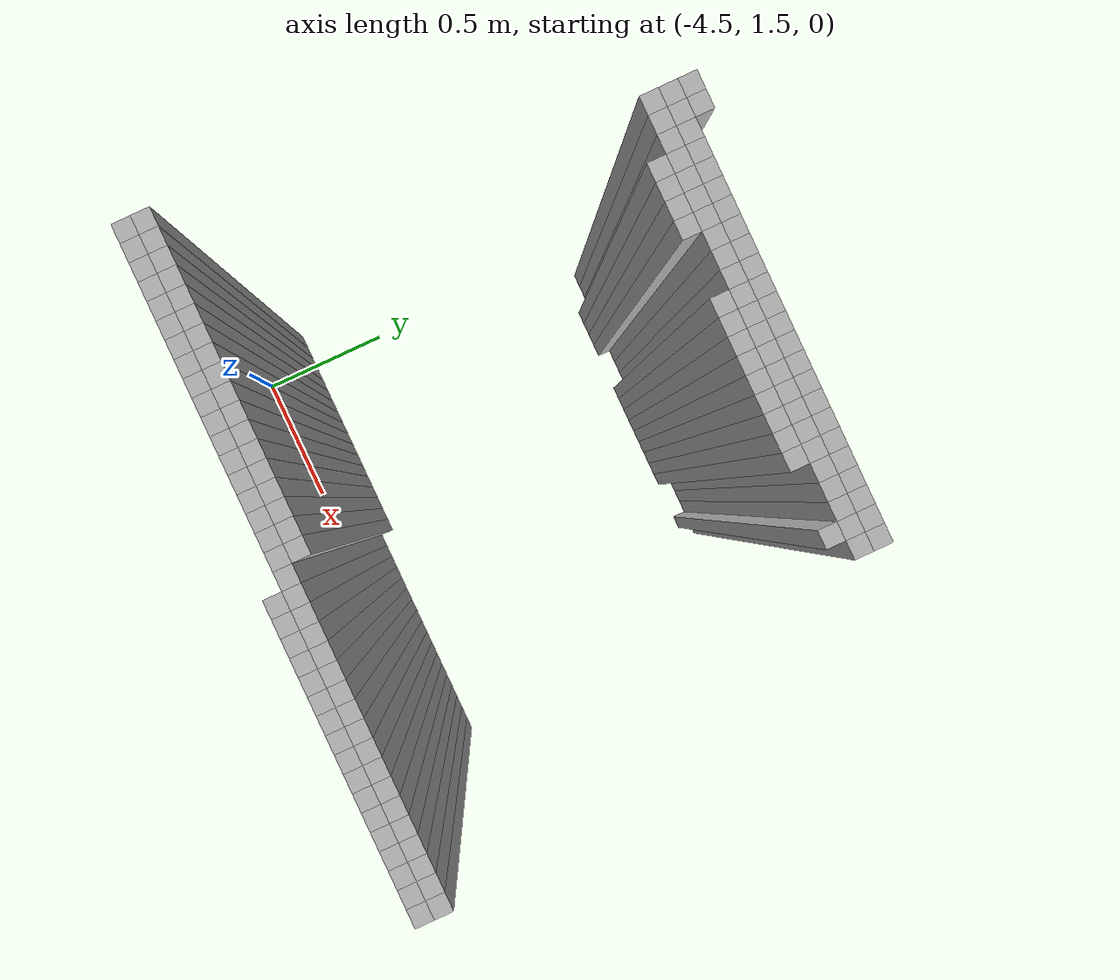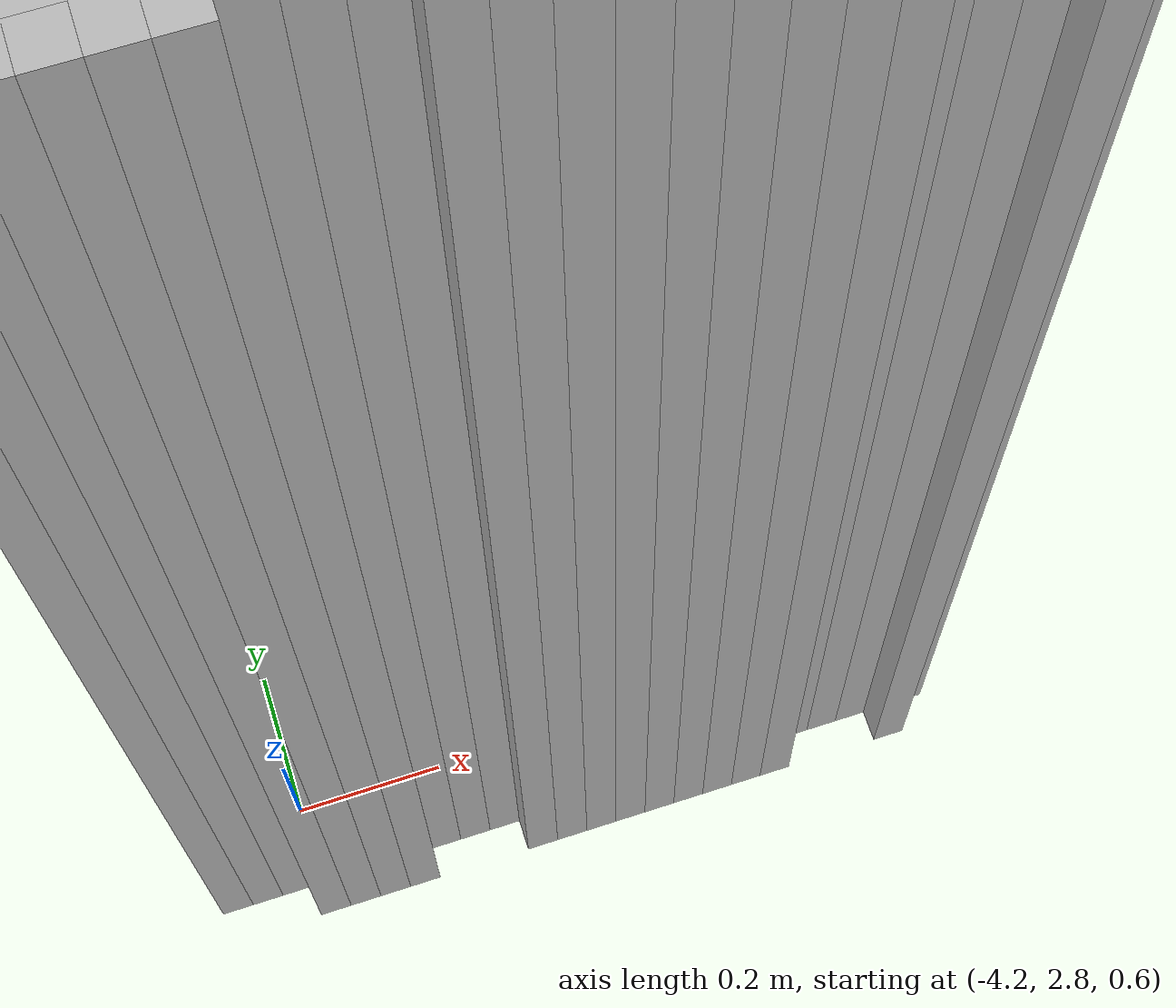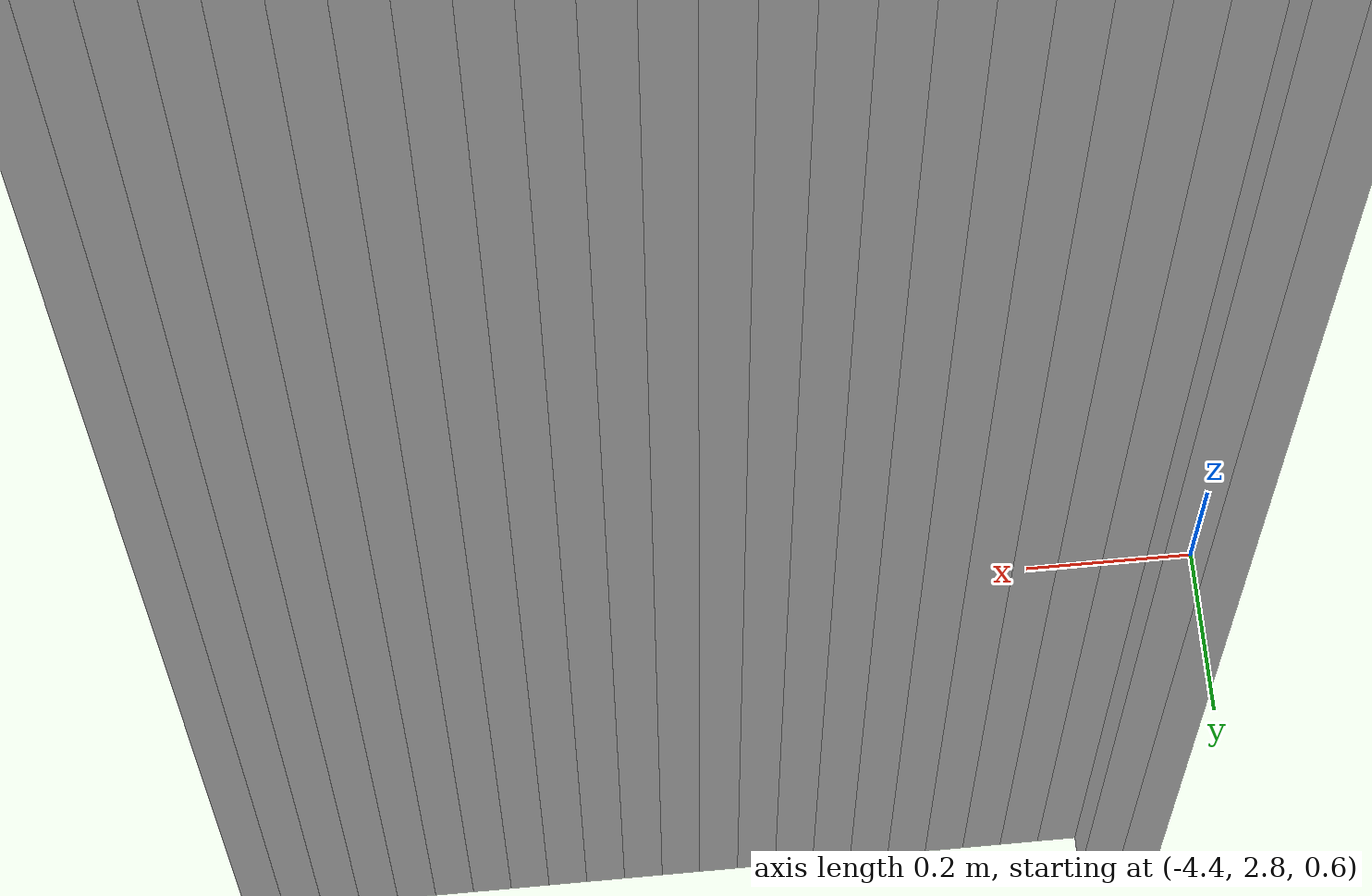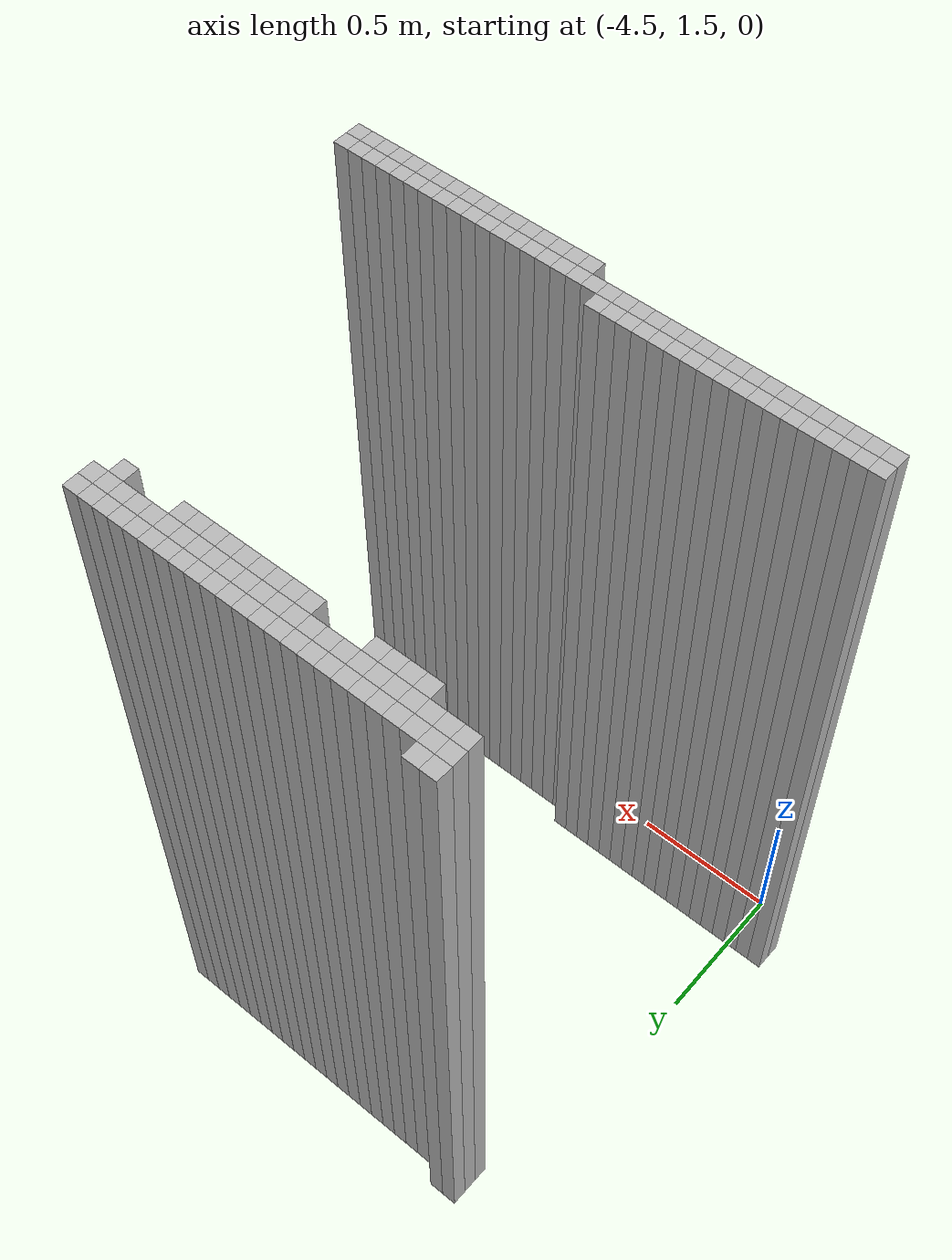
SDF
<sdf version="1.9">
 <world name="map_world">
  <model name="wall_136_94">
   <static>true</static>
   <pose>-4.361 2.980 1.250 0 0 0</pose>
   <link name="link">
    <collision name="collision"><geometry><box><size>0.050 0.050 2.500</size></box></geometry></collision>
    <visual name="visual"><geometry><box><size>0.050 0.050 2.500</size></box></geometry></visual>
   </link>
  </model>
  <model name="wall_137_94">
   <static>true</static>
   <pose>-4.311 2.980 1.250 0 0 0</pose>
   <link name="link">
    <collision name="collision"><geometry><box><size>0.050 0.050 2.500</size></box></geometry></collision>
    <visual name="visual"><geometry><box><size>0.050 0.050 2.500</size></box></geometry></visual>
   </link>
  </model>
  <model name="wall_136_95">
   <static>true</static>
   <pose>-4.361 2.930 1.250 0 0 0</pose>
   <link name="link">
    <collision name="collision"><geometry><box><size>0.050 0.050 2.500</size></box></geometry></collision>
    <visual name="visual"><geometry><box><size>0.050 0.050 2.500</size></box></geometry></visual>
   </link>
  </model>
  <model name="wall_137_95">
   <static>true</static>
   <pose>-4.311 2.930 1.250 0 0 0</pose>
   <link name="link">
    <collision name="collision"><geometry><box><size>0.050 0.050 2.500</size></box></geometry></collision>
    <visual name="visual"><geometry><box><size>0.050 0.050 2.500</size></box></geometry></visual>
   </link>
  </model>
  <model name="wall_138_95">
   <static>true</static>
   <pose>-4.261 2.930 1.250 0 0 0</pose>
   <link name="link">
    <collision name="collision"><geometry><box><size>0.050 0.050 2.500</size></box></geometry></collision>
    <visual name="visual"><geometry><box><size>0.050 0.050 2.500</size></box></geometry></visual>
   </link>
  </model>
  <model name="wall_139_95">
   <static>true</static>
   <pose>-4.211 2.930 1.250 0 0 0</pose>
   <link name="link">
    <collision name="collision"><geometry><box><size>0.050 0.050 2.500</size></box></geometry></collision>
    <visual name="visual"><geometry><box><size>0.050 0.050 2.500</size></box></geometry></visual>
   </link>
  </model>
  <model name="wall_140_95">
   <static>true</static>
   <pose>-4.161 2.930 1.250 0 0 0</pose>
   <link name="link">
    <collision name="collision"><geometry><box><size>0.050 0.050 2.500</size></box></geometry></collision>
    <visual name="visual"><geometry><box><size>0.050 0.050 2.500</size></box></geometry></visual>
   </link>
  </model>
  <model name="wall_141_95">
   <static>true</static>
   <pose>-4.111 2.930 1.250 0 0 0</pose>
   <link name="link">
    <collision name="collision"><geometry><box><size>0.050 0.050 2.500</size></box></geometry></collision>
    <visual name="visual"><geometry><box><size>0.050 0.050 2.500</size></box></geometry></visual>
   </link>
  </model>
  <model name="wall_142_95">
   <static>true</static>
   <pose>-4.061 2.930 1.250 0 0 0</pose>
   <link name="link">
    <collision name="collision"><geometry><box><size>0.050 0.050 2.500</size></box></geometry></collision>
    <visual name="visual"><geometry><box><size>0.050 0.050 2.500</size></box></geometry></visual>
   </link>
  </model>
  <model name="wall_143_95">
   <static>true</static>
   <pose>-4.011 2.930 1.250 0 0 0</pose>
   <link name="link">
    <collision name="collision"><geometry><box><size>0.050 0.050 2.500</size></box></geometry></collision>
    <visual name="visual"><geometry><box><size>0.050 0.050 2.500</size></box></geometry></visual>
   </link>
  </model>
  <model name="wall_144_95">
   <static>true</static>
   <pose>-3.961 2.930 1.250 0 0 0</pose>
   <link name="link">
    <collision name="collision"><geometry><box><size>0.050 0.050 2.500</size></box></geometry></collision>
    <visual name="visual"><geometry><box><size>0.050 0.050 2.500</size></box></geometry></visual>
   </link>
  </model>
  <model name="wall_145_95">
   <static>true</static>
   <pose>-3.911 2.930 1.250 0 0 0</pose>
   <link name="link">
    <collision name="collision"><geometry><box><size>0.050 0.050 2.500</size></box></geometry></collision>
    <visual name="visual"><geometry><box><size>0.050 0.050 2.500</size></box></geometry></visual>
   </link>
  </model>
  <model name="wall_146_95">
   <static>true</static>
   <pose>-3.861 2.930 1.250 0 0 0</pose>
   <link name="link">
    <collision name="collision"><geometry><box><size>0.050 0.050 2.500</size></box></geometry></collision>
    <visual name="visual"><geometry><box><size>0.050 0.050 2.500</size></box></geometry></visual>
   </link>
  </model>
  <model name="wall_147_95">
   <static>true</static>
   <pose>-3.811 2.930 1.250 0 0 0</pose>
   <link name="link">
    <collision name="collision"><geometry><box><size>0.050 0.050 2.500</size></box></geometry></collision>
    <visual name="visual"><geometry><box><size>0.050 0.050 2.500</size></box></geometry></visual>
   </link>
  </model>
  <model name="wall_148_95">
   <static>true</static>
   <pose>-3.761 2.930 1.250 0 0 0</pose>
   <link name="link">
    <collision name="collision"><geometry><box><size>0.050 0.050 2.500</size></box></geometry></collision>
    <visual name="visual"><geometry><box><size>0.050 0.050 2.500</size></box></geometry></visual>
   </link>
  </model>
  <model name="wall_149_95">
   <static>true</static>
   <pose>-3.711 2.930 1.250 0 0 0</pose>
   <link name="link">
    <collision name="collision"><geometry><box><size>0.050 0.050 2.500</size></box></geometry></collision>
    <visual name="visual"><geometry><box><size>0.050 0.050 2.500</size></box></geometry></visual>
   </link>
  </model>
  <model name="wall_150_95">
   <static>true</static>
   <pose>-3.661 2.930 1.250 0 0 0</pose>
   <link name="link">
    <collision name="collision"><geometry><box><size>0.050 0.050 2.500</size></box></geometry></collision>
    <visual name="visual"><geometry><box><size>0.050 0.050 2.500</size></box></geometry></visual>
   </link>
  </model>
  <model name="wall_151_95">
   <static>true</static>
   <pose>-3.611 2.930 1.250 0 0 0</pose>
   <link name="link">
    <collision name="collision"><geometry><box><size>0.050 0.050 2.500</size></box></geometry></collision>
    <visual name="visual"><geometry><box><size>0.050 0.050 2.500</size></box></geometry></visual>
   </link>
  </model>
  <model name="wall_152_95">
   <static>true</static>
   <pose>-3.561 2.930 1.250 0 0 0</pose>
   <link name="link">
    <collision name="collision"><geometry><box><size>0.050 0.050 2.500</size></box></geometry></collision>
    <visual name="visual"><geometry><box><size>0.050 0.050 2.500</size></box></geometry></visual>
   </link>
  </model>
  <model name="wall_153_95">
   <static>true</static>
   <pose>-3.511 2.930 1.250 0 0 0</pose>
   <link name="link">
    <collision name="collision"><geometry><box><size>0.050 0.050 2.500</size></box></geometry></collision>
    <visual name="visual"><geometry><box><size>0.050 0.050 2.500</size></box></geometry></visual>
   </link>
  </model>
  <model name="wall_154_95">
   <static>true</static>
   <pose>-3.461 2.930 1.250 0 0 0</pose>
   <link name="link">
    <collision name="collision"><geometry><box><size>0.050 0.050 2.500</size></box></geometry></collision>
    <visual name="visual"><geometry><box><size>0.050 0.050 2.500</size></box></geometry></visual>
   </link>
  </model>
  <model name="wall_155_95">
   <static>true</static>
   <pose>-3.411 2.930 1.250 0 0 0</pose>
   <link name="link">
    <collision name="collision"><geometry><box><size>0.050 0.050 2.500</size></box></geometry></collision>
    <visual name="visual"><geometry><box><size>0.050 0.050 2.500</size></box></geometry></visual>
   </link>
  </model>
  <model name="wall_156_95">
   <static>true</static>
   <pose>-3.361 2.930 1.250 0 0 0</pose>
   <link name="link">
    <collision name="collision"><geometry><box><size>0.050 0.050 2.500</size></box></geometry></collision>
    <visual name="visual"><geometry><box><size>0.050 0.050 2.500</size></box></geometry></visual>
   </link>
  </model>
  <model name="wall_157_95">
   <static>true</static>
   <pose>-3.311 2.930 1.250 0 0 0</pose>
   <link name="link">
    <collision name="collision"><geometry><box><size>0.050 0.050 2.500</size></box></geometry></collision>
    <visual name="visual"><geometry><box><size>0.050 0.050 2.500</size></box></geometry></visual>
   </link>
  </model>
  <model name="wall_158_95">
   <static>true</static>
   <pose>-3.261 2.930 1.250 0 0 0</pose>
   <link name="link">
    <collision name="collision"><geometry><box><size>0.050 0.050 2.500</size></box></geometry></collision>
    <visual name="visual"><geometry><box><size>0.050 0.050 2.500</size></box></geometry></visual>
   </link>
  </model>
  <model name="wall_159_95">
   <static>true</static>
   <pose>-3.211 2.930 1.250 0 0 0</pose>
   <link name="link">
    <collision name="collision"><geometry><box><size>0.050 0.050 2.500</size></box></geometry></collision>
    <visual name="visual"><geometry><box><size>0.050 0.050 2.500</size></box></geometry></visual>
   </link>
  </model>
  <model name="wall_136_96">
   <static>true</static>
   <pose>-4.361 2.880 1.250 0 0 0</pose>
   <link name="link">
    <collision name="collision"><geometry><box><size>0.050 0.050 2.500</size></box></geometry></collision>
    <visual name="visual"><geometry><box><size>0.050 0.050 2.500</size></box></geometry></visual>
   </link>
  </model>
  <model name="wall_137_96">
   <static>true</static>
   <pose>-4.311 2.880 1.250 0 0 0</pose>
   <link name="link">
    <collision name="collision"><geometry><box><size>0.050 0.050 2.500</size></box></geometry></collision>
    <visual name="visual"><geometry><box><size>0.050 0.050 2.500</size></box></geometry></visual>
   </link>
  </model>
  <model name="wall_138_96">
   <static>true</static>
   <pose>-4.261 2.880 1.250 0 0 0</pose>
   <link name="link">
    <collision name="collision"><geometry><box><size>0.050 0.050 2.500</size></box></geometry></collision>
    <visual name="visual"><geometry><box><size>0.050 0.050 2.500</size></box></geometry></visual>
   </link>
  </model>
  <model name="wall_139_96">
   <static>true</static>
   <pose>-4.211 2.880 1.250 0 0 0</pose>
   <link name="link">
    <collision name="collision"><geometry><box><size>0.050 0.050 2.500</size></box></geometry></collision>
    <visual name="visual"><geometry><box><size>0.050 0.050 2.500</size></box></geometry></visual>
   </link>
  </model>
  <model name="wall_140_96">
   <static>true</static>
   <pose>-4.161 2.880 1.250 0 0 0</pose>
   <link name="link">
    <collision name="collision"><geometry><box><size>0.050 0.050 2.500</size></box></geometry></collision>
    <visual name="visual"><geometry><box><size>0.050 0.050 2.500</size></box></geometry></visual>
   </link>
  </model>
  <model name="wall_141_96">
   <static>true</static>
   <pose>-4.111 2.880 1.250 0 0 0</pose>
   <link name="link">
    <collision name="collision"><geometry><box><size>0.050 0.050 2.500</size></box></geometry></collision>
    <visual name="visual"><geometry><box><size>0.050 0.050 2.500</size></box></geometry></visual>
   </link>
  </model>
  <model name="wall_142_96">
   <static>true</static>
   <pose>-4.061 2.880 1.250 0 0 0</pose>
   <link name="link">
    <collision name="collision"><geometry><box><size>0.050 0.050 2.500</size></box></geometry></collision>
    <visual name="visual"><geometry><box><size>0.050 0.050 2.500</size></box></geometry></visual>
   </link>
  </model>
  <model name="wall_143_96">
   <static>true</static>
   <pose>-4.011 2.880 1.250 0 0 0</pose>
   <link name="link">
    <collision name="collision"><geometry><box><size>0.050 0.050 2.500</size></box></geometry></collision>
    <visual name="visual"><geometry><box><size>0.050 0.050 2.500</size></box></geometry></visual>
   </link>
  </model>
  <model name="wall_144_96">
   <static>true</static>
   <pose>-3.961 2.880 1.250 0 0 0</pose>
   <link name="link">
    <collision name="collision"><geometry><box><size>0.050 0.050 2.500</size></box></geometry></collision>
    <visual name="visual"><geometry><box><size>0.050 0.050 2.500</size></box></geometry></visual>
   </link>
  </model>
  <model name="wall_145_96">
   <static>true</static>
   <pose>-3.911 2.880 1.250 0 0 0</pose>
   <link name="link">
    <collision name="collision"><geometry><box><size>0.050 0.050 2.500</size></box></geometry></collision>
    <visual name="visual"><geometry><box><size>0.050 0.050 2.500</size></box></geometry></visual>
   </link>
  </model>
  <model name="wall_146_96">
   <static>true</static>
   <pose>-3.861 2.880 1.250 0 0 0</pose>
   <link name="link">
    <collision name="collision"><geometry><box><size>0.050 0.050 2.500</size></box></geometry></collision>
    <visual name="visual"><geometry><box><size>0.050 0.050 2.500</size></box></geometry></visual>
   </link>
  </model>
  <model name="wall_147_96">
   <static>true</static>
   <pose>-3.811 2.880 1.250 0 0 0</pose>
   <link name="link">
    <collision name="collision"><geometry><box><size>0.050 0.050 2.500</size></box></geometry></collision>
    <visual name="visual"><geometry><box><size>0.050 0.050 2.500</size></box></geometry></visual>
   </link>
  </model>
  <model name="wall_148_96">
   <static>true</static>
   <pose>-3.761 2.880 1.250 0 0 0</pose>
   <link name="link">
    <collision name="collision"><geometry><box><size>0.050 0.050 2.500</size></box></geometry></collision>
    <visual name="visual"><geometry><box><size>0.050 0.050 2.500</size></box></geometry></visual>
   </link>
  </model>
  <model name="wall_149_96">
   <static>true</static>
   <pose>-3.711 2.880 1.250 0 0 0</pose>
   <link name="link">
    <collision name="collision"><geometry><box><size>0.050 0.050 2.500</size></box></geometry></collision>
    <visual name="visual"><geometry><box><size>0.050 0.050 2.500</size></box></geometry></visual>
   </link>
  </model>
  <model name="wall_150_96">
   <static>true</static>
   <pose>-3.661 2.880 1.250 0 0 0</pose>
   <link name="link">
    <collision name="collision"><geometry><box><size>0.050 0.050 2.500</size></box></geometry></collision>
    <visual name="visual"><geometry><box><size>0.050 0.050 2.500</size></box></geometry></visual>
   </link>
  </model>
  <model name="wall_151_96">
   <static>true</static>
   <pose>-3.611 2.880 1.250 0 0 0</pose>
   <link name="link">
    <collision name="collision"><geometry><box><size>0.050 0.050 2.500</size></box></geometry></collision>
    <visual name="visual"><geometry><box><size>0.050 0.050 2.500</size></box></geometry></visual>
   </link>
  </model>
  <model name="wall_152_96">
   <static>true</static>
   <pose>-3.561 2.880 1.250 0 0 0</pose>
   <link name="link">
    <collision name="collision"><geometry><box><size>0.050 0.050 2.500</size></box></geometry></collision>
    <visual name="visual"><geometry><box><size>0.050 0.050 2.500</size></box></geometry></visual>
   </link>
  </model>
  <model name="wall_153_96">
   <static>true</static>
   <pose>-3.511 2.880 1.250 0 0 0</pose>
   <link name="link">
    <collision name="collision"><geometry><box><size>0.050 0.050 2.500</size></box></geometry></collision>
    <visual name="visual"><geometry><box><size>0.050 0.050 2.500</size></box></geometry></visual>
   </link>
  </model>
  <model name="wall_154_96">
   <static>true</static>
   <pose>-3.461 2.880 1.250 0 0 0</pose>
   <link name="link">
    <collision name="collision"><geometry><box><size>0.050 0.050 2.500</size></box></geometry></collision>
    <visual name="visual"><geometry><box><size>0.050 0.050 2.500</size></box></geometry></visual>
   </link>
  </model>
  <model name="wall_155_96">
   <static>true</static>
   <pose>-3.411 2.880 1.250 0 0 0</pose>
   <link name="link">
    <collision name="collision"><geometry><box><size>0.050 0.050 2.500</size></box></geometry></collision>
    <visual name="visual"><geometry><box><size>0.050 0.050 2.500</size></box></geometry></visual>
   </link>
  </model>
  <model name="wall_156_96">
   <static>true</static>
   <pose>-3.361 2.880 1.250 0 0 0</pose>
   <link name="link">
    <collision name="collision"><geometry><box><size>0.050 0.050 2.500</size></box></geometry></collision>
    <visual name="visual"><geometry><box><size>0.050 0.050 2.500</size></box></geometry></visual>
   </link>
  </model>
  <model name="wall_157_96">
   <static>true</static>
   <pose>-3.311 2.880 1.250 0 0 0</pose>
   <link name="link">
    <collision name="collision"><geometry><box><size>0.050 0.050 2.500</size></box></geometry></collision>
    <visual name="visual"><geometry><box><size>0.050 0.050 2.500</size></box></geometry></visual>
   </link>
  </model>
  <model name="wall_158_96">
   <static>true</static>
   <pose>-3.261 2.880 1.250 0 0 0</pose>
   <link name="link">
    <collision name="collision"><geometry><box><size>0.050 0.050 2.500</size></box></geometry></collision>
    <visual name="visual"><geometry><box><size>0.050 0.050 2.500</size></box></geometry></visual>
   </link>
  </model>
  <model name="wall_159_96">
   <static>true</static>
   <pose>-3.211 2.880 1.250 0 0 0</pose>
   <link name="link">
    <collision name="collision"><geometry><box><size>0.050 0.050 2.500</size></box></geometry></collision>
    <visual name="visual"><geometry><box><size>0.050 0.050 2.500</size></box></geometry></visual>
   </link>
  </model>
  <model name="wall_139_97">
   <static>true</static>
   <pose>-4.211 2.830 1.250 0 0 0</pose>
   <link name="link">
    <collision name="collision"><geometry><box><size>0.050 0.050 2.500</size></box></geometry></collision>
    <visual name="visual"><geometry><box><size>0.050 0.050 2.500</size></box></geometry></visual>
   </link>
  </model>
  <model name="wall_140_97">
   <static>true</static>
   <pose>-4.161 2.830 1.250 0 0 0</pose>
   <link name="link">
    <collision name="collision"><geometry><box><size>0.050 0.050 2.500</size></box></geometry></collision>
    <visual name="visual"><geometry><box><size>0.050 0.050 2.500</size></box></geometry></visual>
   </link>
  </model>
  <model name="wall_141_97">
   <static>true</static>
   <pose>-4.111 2.830 1.250 0 0 0</pose>
   <link name="link">
    <collision name="collision"><geometry><box><size>0.050 0.050 2.500</size></box></geometry></collision>
    <visual name="visual"><geometry><box><size>0.050 0.050 2.500</size></box></geometry></visual>
   </link>
  </model>
  <model name="wall_142_97">
   <static>true</static>
   <pose>-4.061 2.830 1.250 0 0 0</pose>
   <link name="link">
    <collision name="collision"><geometry><box><size>0.050 0.050 2.500</size></box></geometry></collision>
    <visual name="visual"><geometry><box><size>0.050 0.050 2.500</size></box></geometry></visual>
   </link>
  </model>
  <model name="wall_146_97">
   <static>true</static>
   <pose>-3.861 2.830 1.250 0 0 0</pose>
   <link name="link">
    <collision name="collision"><geometry><box><size>0.050 0.050 2.500</size></box></geometry></collision>
    <visual name="visual"><geometry><box><size>0.050 0.050 2.500</size></box></geometry></visual>
   </link>
  </model>
  <model name="wall_147_97">
   <static>true</static>
   <pose>-3.811 2.830 1.250 0 0 0</pose>
   <link name="link">
    <collision name="collision"><geometry><box><size>0.050 0.050 2.500</size></box></geometry></collision>
    <visual name="visual"><geometry><box><size>0.050 0.050 2.500</size></box></geometry></visual>
   </link>
  </model>
  <model name="wall_148_97">
   <static>true</static>
   <pose>-3.761 2.830 1.250 0 0 0</pose>
   <link name="link">
    <collision name="collision"><geometry><box><size>0.050 0.050 2.500</size></box></geometry></collision>
    <visual name="visual"><geometry><box><size>0.050 0.050 2.500</size></box></geometry></visual>
   </link>
  </model>
  <model name="wall_149_97">
   <static>true</static>
   <pose>-3.711 2.830 1.250 0 0 0</pose>
   <link name="link">
    <collision name="collision"><geometry><box><size>0.050 0.050 2.500</size></box></geometry></collision>
    <visual name="visual"><geometry><box><size>0.050 0.050 2.500</size></box></geometry></visual>
   </link>
  </model>
  <model name="wall_150_97">
   <static>true</static>
   <pose>-3.661 2.830 1.250 0 0 0</pose>
   <link name="link">
    <collision name="collision"><geometry><box><size>0.050 0.050 2.500</size></box></geometry></collision>
    <visual name="visual"><geometry><box><size>0.050 0.050 2.500</size></box></geometry></visual>
   </link>
  </model>
  <model name="wall_151_97">
   <static>true</static>
   <pose>-3.611 2.830 1.250 0 0 0</pose>
   <link name="link">
    <collision name="collision"><geometry><box><size>0.050 0.050 2.500</size></box></geometry></collision>
    <visual name="visual"><geometry><box><size>0.050 0.050 2.500</size></box></geometry></visual>
   </link>
  </model>
  <model name="wall_152_97">
   <static>true</static>
   <pose>-3.561 2.830 1.250 0 0 0</pose>
   <link name="link">
    <collision name="collision"><geometry><box><size>0.050 0.050 2.500</size></box></geometry></collision>
    <visual name="visual"><geometry><box><size>0.050 0.050 2.500</size></box></geometry></visual>
   </link>
  </model>
  <model name="wall_153_97">
   <static>true</static>
   <pose>-3.511 2.830 1.250 0 0 0</pose>
   <link name="link">
    <collision name="collision"><geometry><box><size>0.050 0.050 2.500</size></box></geometry></collision>
    <visual name="visual"><geometry><box><size>0.050 0.050 2.500</size></box></geometry></visual>
   </link>
  </model>
  <model name="wall_154_97">
   <static>true</static>
   <pose>-3.461 2.830 1.250 0 0 0</pose>
   <link name="link">
    <collision name="collision"><geometry><box><size>0.050 0.050 2.500</size></box></geometry></collision>
    <visual name="visual"><geometry><box><size>0.050 0.050 2.500</size></box></geometry></visual>
   </link>
  </model>
  <model name="wall_158_97">
   <static>true</static>
   <pose>-3.261 2.830 1.250 0 0 0</pose>
   <link name="link">
    <collision name="collision"><geometry><box><size>0.050 0.050 2.500</size></box></geometry></collision>
    <visual name="visual"><geometry><box><size>0.050 0.050 2.500</size></box></geometry></visual>
   </link>
  </model>
  <model name="wall_131_120">
   <static>true</static>
   <pose>-4.611 1.680 1.250 0 0 0</pose>
   <link name="link">
    <collision name="collision"><geometry><box><size>0.050 0.050 2.500</size></box></geometry></collision>
    <visual name="visual"><geometry><box><size>0.050 0.050 2.500</size></box></geometry></visual>
   </link>
  </model>
  <model name="wall_132_120">
   <static>true</static>
   <pose>-4.561 1.680 1.250 0 0 0</pose>
   <link name="link">
    <collision name="collision"><geometry><box><size>0.050 0.050 2.500</size></box></geometry></collision>
    <visual name="visual"><geometry><box><size>0.050 0.050 2.500</size></box></geometry></visual>
   </link>
  </model>
  <model name="wall_133_120">
   <static>true</static>
   <pose>-4.511 1.680 1.250 0 0 0</pose>
   <link name="link">
    <collision name="collision"><geometry><box><size>0.050 0.050 2.500</size></box></geometry></collision>
    <visual name="visual"><geometry><box><size>0.050 0.050 2.500</size></box></geometry></visual>
   </link>
  </model>
  <model name="wall_134_120">
   <static>true</static>
   <pose>-4.461 1.680 1.250 0 0 0</pose>
   <link name="link">
    <collision name="collision"><geometry><box><size>0.050 0.050 2.500</size></box></geometry></collision>
    <visual name="visual"><geometry><box><size>0.050 0.050 2.500</size></box></geometry></visual>
   </link>
  </model>
  <model name="wall_135_120">
   <static>true</static>
   <pose>-4.411 1.680 1.250 0 0 0</pose>
   <link name="link">
    <collision name="collision"><geometry><box><size>0.050 0.050 2.500</size></box></geometry></collision>
    <visual name="visual"><geometry><box><size>0.050 0.050 2.500</size></box></geometry></visual>
   </link>
  </model>
  <model name="wall_136_120">
   <static>true</static>
   <pose>-4.361 1.680 1.250 0 0 0</pose>
   <link name="link">
    <collision name="collision"><geometry><box><size>0.050 0.050 2.500</size></box></geometry></collision>
    <visual name="visual"><geometry><box><size>0.050 0.050 2.500</size></box></geometry></visual>
   </link>
  </model>
  <model name="wall_137_120">
   <static>true</static>
   <pose>-4.311 1.680 1.250 0 0 0</pose>
   <link name="link">
    <collision name="collision"><geometry><box><size>0.050 0.050 2.500</size></box></geometry></collision>
    <visual name="visual"><geometry><box><size>0.050 0.050 2.500</size></box></geometry></visual>
   </link>
  </model>
  <model name="wall_138_120">
   <static>true</static>
   <pose>-4.261 1.680 1.250 0 0 0</pose>
   <link name="link">
    <collision name="collision"><geometry><box><size>0.050 0.050 2.500</size></box></geometry></collision>
    <visual name="visual"><geometry><box><size>0.050 0.050 2.500</size></box></geometry></visual>
   </link>
  </model>
  <model name="wall_139_120">
   <static>true</static>
   <pose>-4.211 1.680 1.250 0 0 0</pose>
   <link name="link">
    <collision name="collision"><geometry><box><size>0.050 0.050 2.500</size></box></geometry></collision>
    <visual name="visual"><geometry><box><size>0.050 0.050 2.500</size></box></geometry></visual>
   </link>
  </model>
  <model name="wall_140_120">
   <static>true</static>
   <pose>-4.161 1.680 1.250 0 0 0</pose>
   <link name="link">
    <collision name="collision"><geometry><box><size>0.050 0.050 2.500</size></box></geometry></collision>
    <visual name="visual"><geometry><box><size>0.050 0.050 2.500</size></box></geometry></visual>
   </link>
  </model>
  <model name="wall_141_120">
   <static>true</static>
   <pose>-4.111 1.680 1.250 0 0 0</pose>
   <link name="link">
    <collision name="collision"><geometry><box><size>0.050 0.050 2.500</size></box></geometry></collision>
    <visual name="visual"><geometry><box><size>0.050 0.050 2.500</size></box></geometry></visual>
   </link>
  </model>
  <model name="wall_142_120">
   <static>true</static>
   <pose>-4.061 1.680 1.250 0 0 0</pose>
   <link name="link">
    <collision name="collision"><geometry><box><size>0.050 0.050 2.500</size></box></geometry></collision>
    <visual name="visual"><geometry><box><size>0.050 0.050 2.500</size></box></geometry></visual>
   </link>
  </model>
  <model name="wall_143_120">
   <static>true</static>
   <pose>-4.011 1.680 1.250 0 0 0</pose>
   <link name="link">
    <collision name="collision"><geometry><box><size>0.050 0.050 2.500</size></box></geometry></collision>
    <visual name="visual"><geometry><box><size>0.050 0.050 2.500</size></box></geometry></visual>
   </link>
  </model>
  <model name="wall_144_120">
   <static>true</static>
   <pose>-3.961 1.680 1.250 0 0 0</pose>
   <link name="link">
    <collision name="collision"><geometry><box><size>0.050 0.050 2.500</size></box></geometry></collision>
    <visual name="visual"><geometry><box><size>0.050 0.050 2.500</size></box></geometry></visual>
   </link>
  </model>
  <model name="wall_145_120">
   <static>true</static>
   <pose>-3.911 1.680 1.250 0 0 0</pose>
   <link name="link">
    <collision name="collision"><geometry><box><size>0.050 0.050 2.500</size></box></geometry></collision>
    <visual name="visual"><geometry><box><size>0.050 0.050 2.500</size></box></geometry></visual>
   </link>
  </model>
  <model name="wall_146_120">
   <static>true</static>
   <pose>-3.861 1.680 1.250 0 0 0</pose>
   <link name="link">
    <collision name="collision"><geometry><box><size>0.050 0.050 2.500</size></box></geometry></collision>
    <visual name="visual"><geometry><box><size>0.050 0.050 2.500</size></box></geometry></visual>
   </link>
  </model>
  <model name="wall_147_120">
   <static>true</static>
   <pose>-3.811 1.680 1.250 0 0 0</pose>
   <link name="link">
    <collision name="collision"><geometry><box><size>0.050 0.050 2.500</size></box></geometry></collision>
    <visual name="visual"><geometry><box><size>0.050 0.050 2.500</size></box></geometry></visual>
   </link>
  </model>
  <model name="wall_148_120">
   <static>true</static>
   <pose>-3.761 1.680 1.250 0 0 0</pose>
   <link name="link">
    <collision name="collision"><geometry><box><size>0.050 0.050 2.500</size></box></geometry></collision>
    <visual name="visual"><geometry><box><size>0.050 0.050 2.500</size></box></geometry></visual>
   </link>
  </model>
  <model name="wall_131_121">
   <static>true</static>
   <pose>-4.611 1.630 1.250 0 0 0</pose>
   <link name="link">
    <collision name="collision"><geometry><box><size>0.050 0.050 2.500</size></box></geometry></collision>
    <visual name="visual"><geometry><box><size>0.050 0.050 2.500</size></box></geometry></visual>
   </link>
  </model>
  <model name="wall_132_121">
   <static>true</static>
   <pose>-4.561 1.630 1.250 0 0 0</pose>
   <link name="link">
    <collision name="collision"><geometry><box><size>0.050 0.050 2.500</size></box></geometry></collision>
    <visual name="visual"><geometry><box><size>0.050 0.050 2.500</size></box></geometry></visual>
   </link>
  </model>
  <model name="wall_133_121">
   <static>true</static>
   <pose>-4.511 1.630 1.250 0 0 0</pose>
   <link name="link">
    <collision name="collision"><geometry><box><size>0.050 0.050 2.500</size></box></geometry></collision>
    <visual name="visual"><geometry><box><size>0.050 0.050 2.500</size></box></geometry></visual>
   </link>
  </model>
  <model name="wall_134_121">
   <static>true</static>
   <pose>-4.461 1.630 1.250 0 0 0</pose>
   <link name="link">
    <collision name="collision"><geometry><box><size>0.050 0.050 2.500</size></box></geometry></collision>
    <visual name="visual"><geometry><box><size>0.050 0.050 2.500</size></box></geometry></visual>
   </link>
  </model>
  <model name="wall_135_121">
   <static>true</static>
   <pose>-4.411 1.630 1.250 0 0 0</pose>
   <link name="link">
    <collision name="collision"><geometry><box><size>0.050 0.050 2.500</size></box></geometry></collision>
    <visual name="visual"><geometry><box><size>0.050 0.050 2.500</size></box></geometry></visual>
   </link>
  </model>
  <model name="wall_136_121">
   <static>true</static>
   <pose>-4.361 1.630 1.250 0 0 0</pose>
   <link name="link">
    <collision name="collision"><geometry><box><size>0.050 0.050 2.500</size></box></geometry></collision>
    <visual name="visual"><geometry><box><size>0.050 0.050 2.500</size></box></geometry></visual>
   </link>
  </model>
  <model name="wall_137_121">
   <static>true</static>
   <pose>-4.311 1.630 1.250 0 0 0</pose>
   <link name="link">
    <collision name="collision"><geometry><box><size>0.050 0.050 2.500</size></box></geometry></collision>
    <visual name="visual"><geometry><box><size>0.050 0.050 2.500</size></box></geometry></visual>
   </link>
  </model>
  <model name="wall_138_121">
   <static>true</static>
   <pose>-4.261 1.630 1.250 0 0 0</pose>
   <link name="link">
    <collision name="collision"><geometry><box><size>0.050 0.050 2.500</size></box></geometry></collision>
    <visual name="visual"><geometry><box><size>0.050 0.050 2.500</size></box></geometry></visual>
   </link>
  </model>
  <model name="wall_139_121">
   <static>true</static>
   <pose>-4.211 1.630 1.250 0 0 0</pose>
   <link name="link">
    <collision name="collision"><geometry><box><size>0.050 0.050 2.500</size></box></geometry></collision>
    <visual name="visual"><geometry><box><size>0.050 0.050 2.500</size></box></geometry></visual>
   </link>
  </model>
  <model name="wall_140_121">
   <static>true</static>
   <pose>-4.161 1.630 1.250 0 0 0</pose>
   <link name="link">
    <collision name="collision"><geometry><box><size>0.050 0.050 2.500</size></box></geometry></collision>
    <visual name="visual"><geometry><box><size>0.050 0.050 2.500</size></box></geometry></visual>
   </link>
  </model>
  <model name="wall_141_121">
   <static>true</static>
   <pose>-4.111 1.630 1.250 0 0 0</pose>
   <link name="link">
    <collision name="collision"><geometry><box><size>0.050 0.050 2.500</size></box></geometry></collision>
    <visual name="visual"><geometry><box><size>0.050 0.050 2.500</size></box></geometry></visual>
   </link>
  </model>
  <model name="wall_142_121">
   <static>true</static>
   <pose>-4.061 1.630 1.250 0 0 0</pose>
   <link name="link">
    <collision name="collision"><geometry><box><size>0.050 0.050 2.500</size></box></geometry></collision>
    <visual name="visual"><geometry><box><size>0.050 0.050 2.500</size></box></geometry></visual>
   </link>
  </model>
  <model name="wall_143_121">
   <static>true</static>
   <pose>-4.011 1.630 1.250 0 0 0</pose>
   <link name="link">
    <collision name="collision"><geometry><box><size>0.050 0.050 2.500</size></box></geometry></collision>
    <visual name="visual"><geometry><box><size>0.050 0.050 2.500</size></box></geometry></visual>
   </link>
  </model>
  <model name="wall_144_121">
   <static>true</static>
   <pose>-3.961 1.630 1.250 0 0 0</pose>
   <link name="link">
    <collision name="collision"><geometry><box><size>0.050 0.050 2.500</size></box></geometry></collision>
    <visual name="visual"><geometry><box><size>0.050 0.050 2.500</size></box></geometry></visual>
   </link>
  </model>
  <model name="wall_145_121">
   <static>true</static>
   <pose>-3.911 1.630 1.250 0 0 0</pose>
   <link name="link">
    <collision name="collision"><geometry><box><size>0.050 0.050 2.500</size></box></geometry></collision>
    <visual name="visual"><geometry><box><size>0.050 0.050 2.500</size></box></geometry></visual>
   </link>
  </model>
  <model name="wall_146_121">
   <static>true</static>
   <pose>-3.861 1.630 1.250 0 0 0</pose>
   <link name="link">
    <collision name="collision"><geometry><box><size>0.050 0.050 2.500</size></box></geometry></collision>
    <visual name="visual"><geometry><box><size>0.050 0.050 2.500</size></box></geometry></visual>
   </link>
  </model>
  <model name="wall_147_121">
   <static>true</static>
   <pose>-3.811 1.630 1.250 0 0 0</pose>
   <link name="link">
    <collision name="collision"><geometry><box><size>0.050 0.050 2.500</size></box></geometry></collision>
    <visual name="visual"><geometry><box><size>0.050 0.050 2.500</size></box></geometry></visual>
   </link>
  </model>
  <model name="wall_148_121">
   <static>true</static>
   <pose>-3.761 1.630 1.250 0 0 0</pose>
   <link name="link">
    <collision name="collision"><geometry><box><size>0.050 0.050 2.500</size></box></geometry></collision>
    <visual name="visual"><geometry><box><size>0.050 0.050 2.500</size></box></geometry></visual>
   </link>
  </model>
  <model name="wall_149_121">
   <static>true</static>
   <pose>-3.711 1.630 1.250 0 0 0</pose>
   <link name="link">
    <collision name="collision"><geometry><box><size>0.050 0.050 2.500</size></box></geometry></collision>
    <visual name="visual"><geometry><box><size>0.050 0.050 2.500</size></box></geometry></visual>
   </link>
  </model>
  <model name="wall_150_121">
   <static>true</static>
   <pose>-3.661 1.630 1.250 0 0 0</pose>
   <link name="link">
    <collision name="collision"><geometry><box><size>0.050 0.050 2.500</size></box></geometry></collision>
    <visual name="visual"><geometry><box><size>0.050 0.050 2.500</size></box></geometry></visual>
   </link>
  </model>
  <model name="wall_151_121">
   <static>true</static>
   <pose>-3.611 1.630 1.250 0 0 0</pose>
   <link name="link">
    <collision name="collision"><geometry><box><size>0.050 0.050 2.500</size></box></geometry></collision>
    <visual name="visual"><geometry><box><size>0.050 0.050 2.500</size></box></geometry></visual>
   </link>
  </model>
  <model name="wall_152_121">
   <static>true</static>
   <pose>-3.561 1.630 1.250 0 0 0</pose>
   <link name="link">
    <collision name="collision"><geometry><box><size>0.050 0.050 2.500</size></box></geometry></collision>
    <visual name="visual"><geometry><box><size>0.050 0.050 2.500</size></box></geometry></visual>
   </link>
  </model>
  <model name="wall_153_121">
   <static>true</static>
   <pose>-3.511 1.630 1.250 0 0 0</pose>
   <link name="link">
    <collision name="collision"><geometry><box><size>0.050 0.050 2.500</size></box></geometry></collision>
    <visual name="visual"><geometry><box><size>0.050 0.050 2.500</size></box></geometry></visual>
   </link>
  </model>
  <model name="wall_154_121">
   <static>true</static>
   <pose>-3.461 1.630 1.250 0 0 0</pose>
   <link name="link">
    <collision name="collision"><geometry><box><size>0.050 0.050 2.500</size></box></geometry></collision>
    <visual name="visual"><geometry><box><size>0.050 0.050 2.500</size></box></geometry></visual>
   </link>
  </model>
  <model name="wall_155_121">
   <static>true</static>
   <pose>-3.411 1.630 1.250 0 0 0</pose>
   <link name="link">
    <collision name="collision"><geometry><box><size>0.050 0.050 2.500</size></box></geometry></collision>
    <visual name="visual"><geometry><box><size>0.050 0.050 2.500</size></box></geometry></visual>
   </link>
  </model>
  <model name="wall_156_121">
   <static>true</static>
   <pose>-3.361 1.630 1.250 0 0 0</pose>
   <link name="link">
    <collision name="collision"><geometry><box><size>0.050 0.050 2.500</size></box></geometry></collision>
    <visual name="visual"><geometry><box><size>0.050 0.050 2.500</size></box></geometry></visual>
   </link>
  </model>
  <model name="wall_157_121">
   <static>true</static>
   <pose>-3.311 1.630 1.250 0 0 0</pose>
   <link name="link">
    <collision name="collision"><geometry><box><size>0.050 0.050 2.500</size></box></geometry></collision>
    <visual name="visual"><geometry><box><size>0.050 0.050 2.500</size></box></geometry></visual>
   </link>
  </model>
  <model name="wall_158_121">
   <static>true</static>
   <pose>-3.261 1.630 1.250 0 0 0</pose>
   <link name="link">
    <collision name="collision"><geometry><box><size>0.050 0.050 2.500</size></box></geometry></collision>
    <visual name="visual"><geometry><box><size>0.050 0.050 2.500</size></box></geometry></visual>
   </link>
  </model>
  <model name="wall_159_121">
   <static>true</static>
   <pose>-3.211 1.630 1.250 0 0 0</pose>
   <link name="link">
    <collision name="collision"><geometry><box><size>0.050 0.050 2.500</size></box></geometry></collision>
    <visual name="visual"><geometry><box><size>0.050 0.050 2.500</size></box></geometry></visual>
   </link>
  </model>
  <model name="wall_160_121">
   <static>true</static>
   <pose>-3.161 1.630 1.250 0 0 0</pose>
   <link name="link">
    <collision name="collision"><geometry><box><size>0.050 0.050 2.500</size></box></geometry></collision>
    <visual name="visual"><geometry><box><size>0.050 0.050 2.500</size></box></geometry></visual>
   </link>
  </model>
  <model name="wall_161_121">
   <static>true</static>
   <pose>-3.111 1.630 1.250 0 0 0</pose>
   <link name="link">
    <collision name="collision"><geometry><box><size>0.050 0.050 2.500</size></box></geometry></collision>
    <visual name="visual"><geometry><box><size>0.050 0.050 2.500</size></box></geometry></visual>
   </link>
  </model>
  <model name="wall_162_121">
   <static>true</static>
   <pose>-3.061 1.630 1.250 0 0 0</pose>
   <link name="link">
    <collision name="collision"><geometry><box><size>0.050 0.050 2.500</size></box></geometry></collision>
    <visual name="visual"><geometry><box><size>0.050 0.050 2.500</size></box></geometry></visual>
   </link>
  </model>
  <model name="wall_163_121">
   <static>true</static>
   <pose>-3.011 1.630 1.250 0 0 0</pose>
   <link name="link">
    <collision name="collision"><geometry><box><size>0.050 0.050 2.500</size></box></geometry></collision>
    <visual name="visual"><geometry><box><size>0.050 0.050 2.500</size></box></geometry></visual>
   </link>
  </model>
  <model name="wall_164_121">
   <static>true</static>
   <pose>-2.961 1.630 1.250 0 0 0</pose>
   <link name="link">
    <collision name="collision"><geometry><box><size>0.050 0.050 2.500</size></box></geometry></collision>
    <visual name="visual"><geometry><box><size>0.050 0.050 2.500</size></box></geometry></visual>
   </link>
  </model>
  <model name="wall_165_121">
   <static>true</static>
   <pose>-2.911 1.630 1.250 0 0 0</pose>
   <link name="link">
    <collision name="collision"><geometry><box><size>0.050 0.050 2.500</size></box></geometry></collision>
    <visual name="visual"><geometry><box><size>0.050 0.050 2.500</size></box></geometry></visual>
   </link>
  </model>
  <model name="wall_166_121">
   <static>true</static>
   <pose>-2.861 1.630 1.250 0 0 0</pose>
   <link name="link">
    <collision name="collision"><geometry><box><size>0.050 0.050 2.500</size></box></geometry></collision>
    <visual name="visual"><geometry><box><size>0.050 0.050 2.500</size></box></geometry></visual>
   </link>
  </model>
  <model name="wall_150_122">
   <static>true</static>
   <pose>-3.661 1.580 1.250 0 0 0</pose>
   <link name="link">
    <collision name="collision"><geometry><box><size>0.050 0.050 2.500</size></box></geometry></collision>
    <visual name="visual"><geometry><box><size>0.050 0.050 2.500</size></box></geometry></visual>
   </link>
  </model>
  <model name="wall_151_122">
   <static>true</static>
   <pose>-3.611 1.580 1.250 0 0 0</pose>
   <link name="link">
    <collision name="collision"><geometry><box><size>0.050 0.050 2.500</size></box></geometry></collision>
    <visual name="visual"><geometry><box><size>0.050 0.050 2.500</size></box></geometry></visual>
   </link>
  </model>
  <model name="wall_152_122">
   <static>true</static>
   <pose>-3.561 1.580 1.250 0 0 0</pose>
   <link name="link">
    <collision name="collision"><geometry><box><size>0.050 0.050 2.500</size></box></geometry></collision>
    <visual name="visual"><geometry><box><size>0.050 0.050 2.500</size></box></geometry></visual>
   </link>
  </model>
  <model name="wall_153_122">
   <static>true</static>
   <pose>-3.511 1.580 1.250 0 0 0</pose>
   <link name="link">
    <collision name="collision"><geometry><box><size>0.050 0.050 2.500</size></box></geometry></collision>
    <visual name="visual"><geometry><box><size>0.050 0.050 2.500</size></box></geometry></visual>
   </link>
  </model>
  <model name="wall_154_122">
   <static>true</static>
   <pose>-3.461 1.580 1.250 0 0 0</pose>
   <link name="link">
    <collision name="collision"><geometry><box><size>0.050 0.050 2.500</size></box></geometry></collision>
    <visual name="visual"><geometry><box><size>0.050 0.050 2.500</size></box></geometry></visual>
   </link>
  </model>
  <model name="wall_155_122">
   <static>true</static>
   <pose>-3.411 1.580 1.250 0 0 0</pose>
   <link name="link">
    <collision name="collision"><geometry><box><size>0.050 0.050 2.500</size></box></geometry></collision>
    <visual name="visual"><geometry><box><size>0.050 0.050 2.500</size></box></geometry></visual>
   </link>
  </model>
  <model name="wall_156_122">
   <static>true</static>
   <pose>-3.361 1.580 1.250 0 0 0</pose>
   <link name="link">
    <collision name="collision"><geometry><box><size>0.050 0.050 2.500</size></box></geometry></collision>
    <visual name="visual"><geometry><box><size>0.050 0.050 2.500</size></box></geometry></visual>
   </link>
  </model>
  <model name="wall_157_122">
   <static>true</static>
   <pose>-3.311 1.580 1.250 0 0 0</pose>
   <link name="link">
    <collision name="collision"><geometry><box><size>0.050 0.050 2.500</size></box></geometry></collision>
    <visual name="visual"><geometry><box><size>0.050 0.050 2.500</size></box></geometry></visual>
   </link>
  </model>
  <model name="wall_158_122">
   <static>true</static>
   <pose>-3.261 1.580 1.250 0 0 0</pose>
   <link name="link">
    <collision name="collision"><geometry><box><size>0.050 0.050 2.500</size></box></geometry></collision>
    <visual name="visual"><geometry><box><size>0.050 0.050 2.500</size></box></geometry></visual>
   </link>
  </model>
  <model name="wall_159_122">
   <static>true</static>
   <pose>-3.211 1.580 1.250 0 0 0</pose>
   <link name="link">
    <collision name="collision"><geometry><box><size>0.050 0.050 2.500</size></box></geometry></collision>
    <visual name="visual"><geometry><box><size>0.050 0.050 2.500</size></box></geometry></visual>
   </link>
  </model>
  <model name="wall_160_122">
   <static>true</static>
   <pose>-3.161 1.580 1.250 0 0 0</pose>
   <link name="link">
    <collision name="collision"><geometry><box><size>0.050 0.050 2.500</size></box></geometry></collision>
    <visual name="visual"><geometry><box><size>0.050 0.050 2.500</size></box></geometry></visual>
   </link>
  </model>
  <model name="wall_161_122">
   <static>true</static>
   <pose>-3.111 1.580 1.250 0 0 0</pose>
   <link name="link">
    <collision name="collision"><geometry><box><size>0.050 0.050 2.500</size></box></geometry></collision>
    <visual name="visual"><geometry><box><size>0.050 0.050 2.500</size></box></geometry></visual>
   </link>
  </model>
  <model name="wall_162_122">
   <static>true</static>
   <pose>-3.061 1.580 1.250 0 0 0</pose>
   <link name="link">
    <collision name="collision"><geometry><box><size>0.050 0.050 2.500</size></box></geometry></collision>
    <visual name="visual"><geometry><box><size>0.050 0.050 2.500</size></box></geometry></visual>
   </link>
  </model>
  <model name="wall_163_122">
   <static>true</static>
   <pose>-3.011 1.580 1.250 0 0 0</pose>
   <link name="link">
    <collision name="collision"><geometry><box><size>0.050 0.050 2.500</size></box></geometry></collision>
    <visual name="visual"><geometry><box><size>0.050 0.050 2.500</size></box></geometry></visual>
   </link>
  </model>
  <model name="wall_164_122">
   <static>true</static>
   <pose>-2.961 1.580 1.250 0 0 0</pose>
   <link name="link">
    <collision name="collision"><geometry><box><size>0.050 0.050 2.500</size></box></geometry></collision>
    <visual name="visual"><geometry><box><size>0.050 0.050 2.500</size></box></geometry></visual>
   </link>
  </model>
  <model name="wall_165_122">
   <static>true</static>
   <pose>-2.911 1.580 1.250 0 0 0</pose>
   <link name="link">
    <collision name="collision"><geometry><box><size>0.050 0.050 2.500</size></box></geometry></collision>
    <visual name="visual"><geometry><box><size>0.050 0.050 2.500</size></box></geometry></visual>
   </link>
  </model>
  <model name="wall_166_122">
   <static>true</static>
   <pose>-2.861 1.580 1.250 0 0 0</pose>
   <link name="link">
    <collision name="collision"><geometry><box><size>0.050 0.050 2.500</size></box></geometry></collision>
    <visual name="visual"><geometry><box><size>0.050 0.050 2.500</size></box></geometry></visual>
   </link>
  </model>
 </world>
</sdf>
